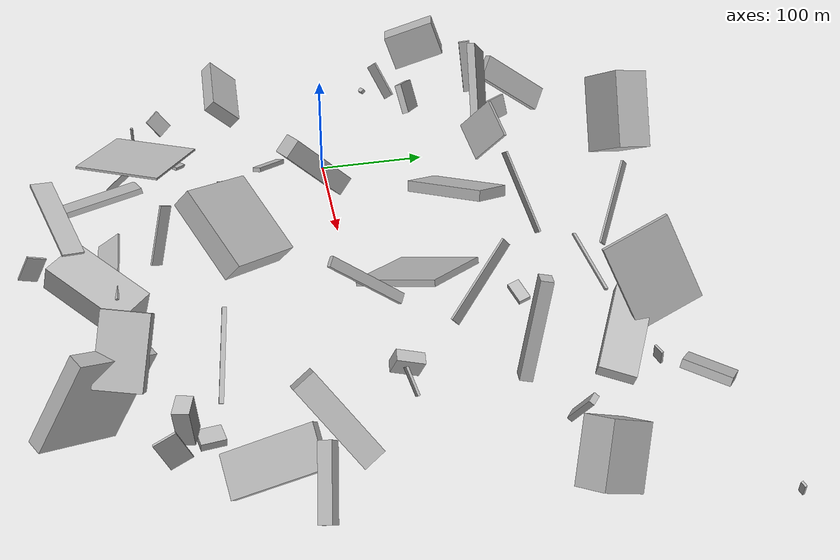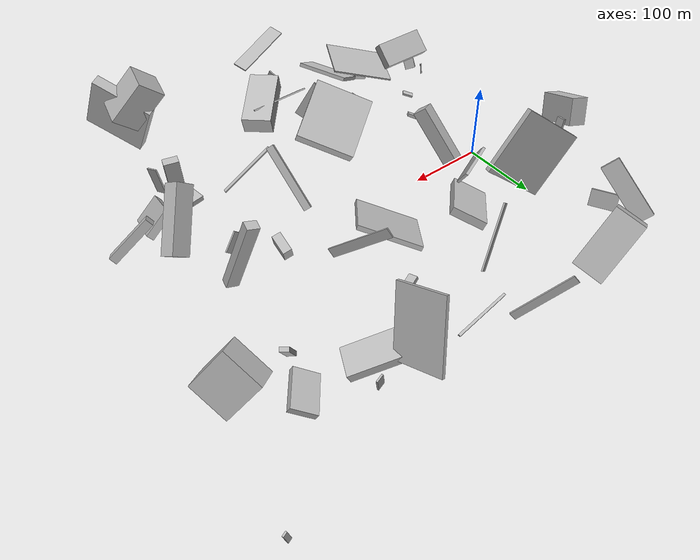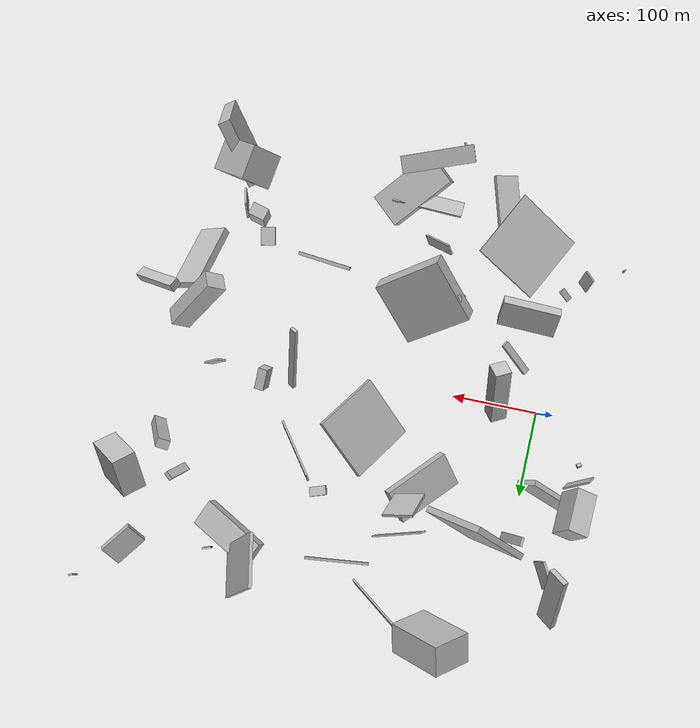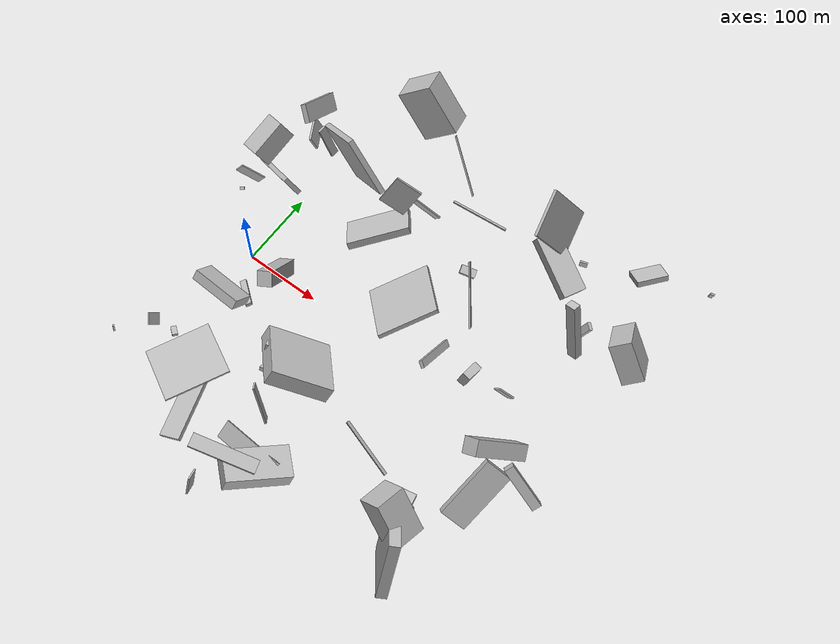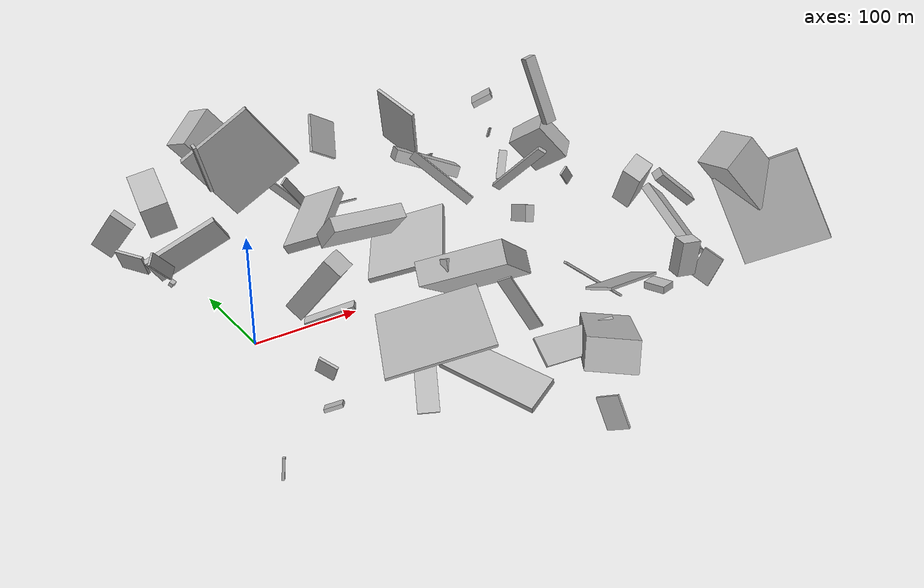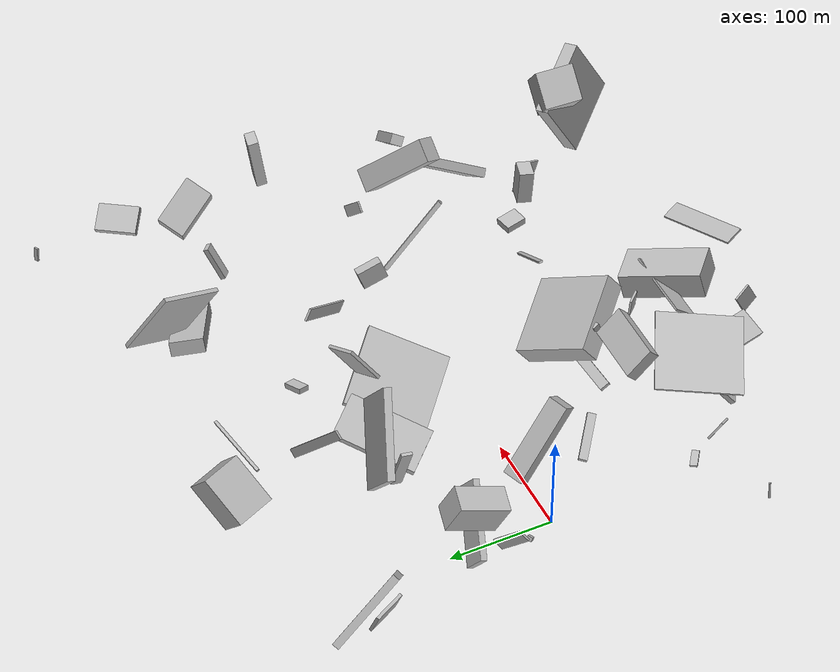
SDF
<sdf version="1.6">
 <world name="default">
  <scene>
   <sky><clouds><speed>12</speed></clouds></sky>
   <ambient>0.4 0.4 0.4 1</ambient>
   <background>0.7 0.7 0.7 1</background>
   <shadows>1</shadows>
  </scene>
  <gravity>0 0 -9.8066</gravity>
  <magnetic_field>6e-06 2.3e-05 -4.2e-05</magnetic_field>
  <physics default="0" name="default_physics" type="ode">
   <ode>
    <solver>
     <type>quick</type>
     <iters>10</iters>
     <sor>1.0</sor>
     <use_dynamic_moi_rescaling>0</use_dynamic_moi_rescaling>
    </solver>
    <constraints>
     <cfm>0</cfm>
     <erp>0.2</erp>
     <contact_max_correcting_vel>100</contact_max_correcting_vel>
     <contact_surface_layer>0.001</contact_surface_layer>
    </constraints>
   </ode>
   <max_step_size>0.004</max_step_size>
   <real_time_factor>1</real_time_factor>
   <real_time_update_rate>250</real_time_update_rate>
  </physics>
  <light name="sun" type="directional">
   <pose>0 0 10 0 0 0</pose>
   <diffuse>0.8 0.8 0.8 1</diffuse>
   <specular>0.2 0.2 0.2 1</specular>
   <attenuation>
    <range>1000</range>
    <constant>0.9</constant>
    <linear>0.01</linear>
    <quadratic>0.001</quadratic>
   </attenuation>
   <direction>-0.5 0.1 -0.9</direction>
  </light>
  <model name="building_1">
   <static>0</static>
   <pose>62.34938757499878 262.7529489826464 74.59584821827353 -0.9135121399435514 -0.2642029749367474 -1.3330759872095916</pose>
   <link name="link">
    <gravity>0</gravity>
    <pose>0 0 24.0 0 0 0</pose>
    <collision name="collision"><geometry><box><size>35 71 48</size></box></geometry></collision>
    <visual name="visual">
     <cast_shadows>0</cast_shadows>
     <geometry><box><size>35 71 48</size></box></geometry>
     <material>
      <script>
       <uri>model://HANNAS_wall/materials/scripts</uri>
       <uri>model://HANNAS_wall/materials/textures</uri>
       <name>vrc/HANNAS_wall</name>
      </script>
     </material>
    </visual>
   </link>
  </model>
  <model name="building_2">
   <static>0</static>
   <pose>452.66415575731094 170.3481478872397 40.609867421765315 -0.9302603256530277 0.4211669164197222 -2.4606733305564656</pose>
   <link name="link">
    <gravity>0</gravity>
    <pose>0 0 24.0 0 0 0</pose>
    <collision name="collision"><geometry><box><size>28 54 48</size></box></geometry></collision>
    <visual name="visual">
     <cast_shadows>0</cast_shadows>
     <geometry><box><size>28 54 48</size></box></geometry>
     <material>
      <script>
       <uri>model://HANNAS_wall/materials/scripts</uri>
       <uri>model://HANNAS_wall/materials/textures</uri>
       <name>vrc/HANNAS_wall</name>
      </script>
     </material>
    </visual>
   </link>
  </model>
  <model name="building_3">
   <static>0</static>
   <pose>79.12284285068331 -142.75370446738236 81.10158668292813 1.6358069206473167 -0.2693597338851433 -0.4985279171391441</pose>
   <link name="link">
    <gravity>0</gravity>
    <pose>0 0 40.0 0 0 0</pose>
    <collision name="collision"><geometry><box><size>80 2 80</size></box></geometry></collision>
    <visual name="visual">
     <cast_shadows>0</cast_shadows>
     <geometry><box><size>80 2 80</size></box></geometry>
     <material>
      <script>
       <uri>model://HANNAS_wall/materials/scripts</uri>
       <uri>model://HANNAS_wall/materials/textures</uri>
       <name>vrc/HANNAS_wall</name>
      </script>
     </material>
    </visual>
   </link>
  </model>
  <model name="building_4">
   <static>0</static>
   <pose>91.87961421493526 81.43226057496612 38.480480241121285 0.9439723259484368 -1.0801303999573502 2.9246890999095827</pose>
   <link name="link">
    <gravity>0</gravity>
    <pose>0 0 40.0 0 0 0</pose>
    <collision name="collision"><geometry><box><size>10 42 80</size></box></geometry></collision>
    <visual name="visual">
     <cast_shadows>0</cast_shadows>
     <geometry><box><size>10 42 80</size></box></geometry>
     <material>
      <script>
       <uri>model://HANNAS_wall/materials/scripts</uri>
       <uri>model://HANNAS_wall/materials/textures</uri>
       <name>vrc/HANNAS_wall</name>
      </script>
     </material>
    </visual>
   </link>
  </model>
  <model name="building_5">
   <static>0</static>
   <pose>121.67385470424075 -107.81774035631747 82.95117362416651 -1.962098434707408 1.2613159090608272 -1.6747529641510654</pose>
   <link name="link">
    <gravity>0</gravity>
    <pose>0 0 3.0 0 0 0</pose>
    <collision name="collision"><geometry><box><size>12 7 6</size></box></geometry></collision>
    <visual name="visual">
     <cast_shadows>0</cast_shadows>
     <geometry><box><size>12 7 6</size></box></geometry>
     <material>
      <script>
       <uri>model://HANNAS_wall/materials/scripts</uri>
       <uri>model://HANNAS_wall/materials/textures</uri>
       <name>vrc/HANNAS_wall</name>
      </script>
     </material>
    </visual>
   </link>
  </model>
  <model name="building_6">
   <static>0</static>
   <pose>404.39782087575065 -38.937790894129115 78.83599010615845 2.164332590947073 -0.6589221005022975 0.03840044580266135</pose>
   <link name="link">
    <gravity>0</gravity>
    <pose>0 0 10.0 0 0 0</pose>
    <collision name="collision"><geometry><box><size>23 80 20</size></box></geometry></collision>
    <visual name="visual">
     <cast_shadows>0</cast_shadows>
     <geometry><box><size>23 80 20</size></box></geometry>
     <material>
      <script>
       <uri>model://HANNAS_wall/materials/scripts</uri>
       <uri>model://HANNAS_wall/materials/textures</uri>
       <name>vrc/HANNAS_wall</name>
      </script>
     </material>
    </visual>
   </link>
  </model>
  <model name="building_7">
   <static>0</static>
   <pose>393.52361808681127 -239.83183299001888 74.45058793060147 -0.203765376213732 -0.4811141323311867 -0.9096229623069847</pose>
   <link name="link">
    <gravity>0</gravity>
    <pose>0 0 40.0 0 0 0</pose>
    <collision name="collision"><geometry><box><size>73 13 80</size></box></geometry></collision>
    <visual name="visual">
     <cast_shadows>0</cast_shadows>
     <geometry><box><size>73 13 80</size></box></geometry>
     <material>
      <script>
       <uri>model://HANNAS_wall/materials/scripts</uri>
       <uri>model://HANNAS_wall/materials/textures</uri>
       <name>vrc/HANNAS_wall</name>
      </script>
     </material>
    </visual>
   </link>
  </model>
  <model name="building_8">
   <static>0</static>
   <pose>-54.187000130572706 101.96397491930237 106.11142800743377 0.9840624899962018 1.1405334198235606 0.8194045507093157</pose>
   <link name="link">
    <gravity>0</gravity>
    <pose>0 0 12.0 0 0 0</pose>
    <collision name="collision"><geometry><box><size>33 48 24</size></box></geometry></collision>
    <visual name="visual">
     <cast_shadows>0</cast_shadows>
     <geometry><box><size>33 48 24</size></box></geometry>
     <material>
      <script>
       <uri>model://HANNAS_wall/materials/scripts</uri>
       <uri>model://HANNAS_wall/materials/textures</uri>
       <name>vrc/HANNAS_wall</name>
      </script>
     </material>
    </visual>
   </link>
  </model>
  <model name="building_9">
   <static>0</static>
   <pose>378.3559888820904 -177.8469583644375 135.75159822600332 -1.397242927512087 0.7364825100363489 3.07800435852017</pose>
   <link name="link">
    <gravity>0</gravity>
    <pose>0 0 18.0 0 0 0</pose>
    <collision name="collision"><geometry><box><size>35 57 36</size></box></geometry></collision>
    <visual name="visual">
     <cast_shadows>0</cast_shadows>
     <geometry><box><size>35 57 36</size></box></geometry>
     <material>
      <script>
       <uri>model://HANNAS_wall/materials/scripts</uri>
       <uri>model://HANNAS_wall/materials/textures</uri>
       <name>vrc/HANNAS_wall</name>
      </script>
     </material>
    </visual>
   </link>
  </model>
  <model name="building_10">
   <static>0</static>
   <pose>345.9533358181516 226.9995165693151 33.395150549836615 -1.4766906078488449 0.04693730425087217 0.31942502170886183</pose>
   <link name="link">
    <gravity>0</gravity>
    <pose>0 0 1.0 0 0 0</pose>
    <collision name="collision"><geometry><box><size>10 13 2</size></box></geometry></collision>
    <visual name="visual">
     <cast_shadows>0</cast_shadows>
     <geometry><box><size>10 13 2</size></box></geometry>
     <material>
      <script>
       <uri>model://HANNAS_wall/materials/scripts</uri>
       <uri>model://HANNAS_wall/materials/textures</uri>
       <name>vrc/HANNAS_wall</name>
      </script>
     </material>
    </visual>
   </link>
  </model>
  <model name="building_11">
   <static>0</static>
   <pose>51.83171154249607 -101.35679648365956 128.88801759117507 0.7765326595046728 -0.03625376524622561 3.1037159927751934</pose>
   <link name="link">
    <gravity>0</gravity>
    <pose>0 0 6.0 0 0 0</pose>
    <collision name="collision"><geometry><box><size>61 30 12</size></box></geometry></collision>
    <visual name="visual">
     <cast_shadows>0</cast_shadows>
     <geometry><box><size>61 30 12</size></box></geometry>
     <material>
      <script>
       <uri>model://HANNAS_wall/materials/scripts</uri>
       <uri>model://HANNAS_wall/materials/textures</uri>
       <name>vrc/HANNAS_wall</name>
      </script>
     </material>
    </visual>
   </link>
  </model>
  <model name="building_12">
   <static>0</static>
   <pose>144.49921961424633 251.82710438885312 32.7073140064923 1.2883077972260122 -0.701933611894651 2.593875800220125</pose>
   <link name="link">
    <gravity>0</gravity>
    <pose>0 0 1.0 0 0 0</pose>
    <collision name="collision"><geometry><box><size>80 10 2</size></box></geometry></collision>
    <visual name="visual">
     <cast_shadows>0</cast_shadows>
     <geometry><box><size>80 10 2</size></box></geometry>
     <material>
      <script>
       <uri>model://HANNAS_wall/materials/scripts</uri>
       <uri>model://HANNAS_wall/materials/textures</uri>
       <name>vrc/HANNAS_wall</name>
      </script>
     </material>
    </visual>
   </link>
  </model>
  <model name="building_13">
   <static>0</static>
   <pose>266.43359610090033 98.77499911264744 60.9285741150797 -0.1541465588614222 -0.6195466169037351 2.2375527414898646</pose>
   <link name="link">
    <gravity>0</gravity>
    <pose>0 0 6.0 0 0 0</pose>
    <collision name="collision"><geometry><box><size>80 2 12</size></box></geometry></collision>
    <visual name="visual">
     <cast_shadows>0</cast_shadows>
     <geometry><box><size>80 2 12</size></box></geometry>
     <material>
      <script>
       <uri>model://HANNAS_wall/materials/scripts</uri>
       <uri>model://HANNAS_wall/materials/textures</uri>
       <name>vrc/HANNAS_wall</name>
      </script>
     </material>
    </visual>
   </link>
  </model>
  <model name="building_14">
   <static>0</static>
   <pose>189.91855535702112 -81.26140938754716 46.90873500078315 1.0021806698290134 -0.363378252151436 -0.804818233806977</pose>
   <link name="link">
    <gravity>0</gravity>
    <pose>0 0 40.0 0 0 0</pose>
    <collision name="collision"><geometry><box><size>76 21 80</size></box></geometry></collision>
    <visual name="visual">
     <cast_shadows>0</cast_shadows>
     <geometry><box><size>76 21 80</size></box></geometry>
     <material>
      <script>
       <uri>model://HANNAS_wall/materials/scripts</uri>
       <uri>model://HANNAS_wall/materials/textures</uri>
       <name>vrc/HANNAS_wall</name>
      </script>
     </material>
    </visual>
   </link>
  </model>
  <model name="building_15">
   <static>0</static>
   <pose>19.187382336811883 133.3336039857555 115.56586704780871 1.459012642270134 0.27449533053889763 3.004642470342967</pose>
   <link name="link">
    <gravity>0</gravity>
    <pose>0 0 5.0 0 0 0</pose>
    <collision name="collision"><geometry><box><size>3 49 10</size></box></geometry></collision>
    <visual name="visual">
     <cast_shadows>0</cast_shadows>
     <geometry><box><size>3 49 10</size></box></geometry>
     <material>
      <script>
       <uri>model://HANNAS_wall/materials/scripts</uri>
       <uri>model://HANNAS_wall/materials/textures</uri>
       <name>vrc/HANNAS_wall</name>
      </script>
     </material>
    </visual>
   </link>
  </model>
  <model name="building_16">
   <static>0</static>
   <pose>-65.5191920878824 -183.19350430529207 9.5990113187339 0.06493018407845164 -0.07831531539102067 2.56163800457105</pose>
   <link name="link">
    <gravity>0</gravity>
    <pose>0 0 8.5 0 0 0</pose>
    <collision name="collision"><geometry><box><size>2 2 17</size></box></geometry></collision>
    <visual name="visual">
     <cast_shadows>0</cast_shadows>
     <geometry><box><size>2 2 17</size></box></geometry>
     <material>
      <script>
       <uri>model://HANNAS_wall/materials/scripts</uri>
       <uri>model://HANNAS_wall/materials/textures</uri>
       <name>vrc/HANNAS_wall</name>
      </script>
     </material>
    </visual>
   </link>
  </model>
  <model name="building_17">
   <static>0</static>
   <pose>414.73566793397833 -94.56406359477239 44.18760380119799 0.5779163390443169 0.5929744018208891 0.16534780257842682</pose>
   <link name="link">
    <gravity>0</gravity>
    <pose>0 0 4.5 0 0 0</pose>
    <collision name="collision"><geometry><box><size>36 80 9</size></box></geometry></collision>
    <visual name="visual">
     <cast_shadows>0</cast_shadows>
     <geometry><box><size>36 80 9</size></box></geometry>
     <material>
      <script>
       <uri>model://HANNAS_wall/materials/scripts</uri>
       <uri>model://HANNAS_wall/materials/textures</uri>
       <name>vrc/HANNAS_wall</name>
      </script>
     </material>
    </visual>
   </link>
  </model>
  <model name="building_18">
   <static>0</static>
   <pose>495.76162317391595 292.4059675179415 23.900257114548527 0.8066956782364958 -1.3261907769479875 -0.4976375980623363</pose>
   <link name="link">
    <gravity>0</gravity>
    <pose>0 0 2.5 0 0 0</pose>
    <collision name="collision"><geometry><box><size>13 2 5</size></box></geometry></collision>
    <visual name="visual">
     <cast_shadows>0</cast_shadows>
     <geometry><box><size>13 2 5</size></box></geometry>
     <material>
      <script>
       <uri>model://HANNAS_wall/materials/scripts</uri>
       <uri>model://HANNAS_wall/materials/textures</uri>
       <name>vrc/HANNAS_wall</name>
      </script>
     </material>
    </visual>
   </link>
  </model>
  <model name="building_19">
   <static>0</static>
   <pose>136.8399827950048 -209.04281323219342 47.71200539411719 1.6841518244787645 0.9160731569851253 1.6069077831667156</pose>
   <link name="link">
    <gravity>0</gravity>
    <pose>0 0 40.0 0 0 0</pose>
    <collision name="collision"><geometry><box><size>2 24 80</size></box></geometry></collision>
    <visual name="visual">
     <cast_shadows>0</cast_shadows>
     <geometry><box><size>2 24 80</size></box></geometry>
     <material>
      <script>
       <uri>model://HANNAS_wall/materials/scripts</uri>
       <uri>model://HANNAS_wall/materials/textures</uri>
       <name>vrc/HANNAS_wall</name>
      </script>
     </material>
    </visual>
   </link>
  </model>
  <model name="building_20">
   <static>0</static>
   <pose>2.850111534414097 -146.11004073415256 21.129728794026086 1.9317041682329037 -0.10530726947277551 -2.2450201927473987</pose>
   <link name="link">
    <gravity>0</gravity>
    <pose>0 0 7.5 0 0 0</pose>
    <collision name="collision"><geometry><box><size>7 3 15</size></box></geometry></collision>
    <visual name="visual">
     <cast_shadows>0</cast_shadows>
     <geometry><box><size>7 3 15</size></box></geometry>
     <material>
      <script>
       <uri>model://HANNAS_wall/materials/scripts</uri>
       <uri>model://HANNAS_wall/materials/textures</uri>
       <name>vrc/HANNAS_wall</name>
      </script>
     </material>
    </visual>
   </link>
  </model>
  <model name="building_21">
   <static>0</static>
   <pose>64.0405139716596 -10.473808305736753 47.55379646151114 1.8371708379582996 -0.8548954049231788 -1.3168449085188618</pose>
   <link name="link">
    <gravity>0</gravity>
    <pose>0 0 9.5 0 0 0</pose>
    <collision name="collision"><geometry><box><size>80 19 19</size></box></geometry></collision>
    <visual name="visual">
     <cast_shadows>0</cast_shadows>
     <geometry><box><size>80 19 19</size></box></geometry>
     <material>
      <script>
       <uri>model://HANNAS_wall/materials/scripts</uri>
       <uri>model://HANNAS_wall/materials/textures</uri>
       <name>vrc/HANNAS_wall</name>
      </script>
     </material>
    </visual>
   </link>
  </model>
  <model name="building_22">
   <static>0</static>
   <pose>430.8612661337306 229.06322307938433 95.10935563529372 -0.06942585280767766 -0.4999811947811804 -0.6166653882449603</pose>
   <link name="link">
    <gravity>0</gravity>
    <pose>0 0 3.5 0 0 0</pose>
    <collision name="collision"><geometry><box><size>26 39 7</size></box></geometry></collision>
    <visual name="visual">
     <cast_shadows>0</cast_shadows>
     <geometry><box><size>26 39 7</size></box></geometry>
     <material>
      <script>
       <uri>model://HANNAS_wall/materials/scripts</uri>
       <uri>model://HANNAS_wall/materials/textures</uri>
       <name>vrc/HANNAS_wall</name>
      </script>
     </material>
    </visual>
   </link>
  </model>
  <model name="building_23">
   <static>0</static>
   <pose>233.29730217204948 140.3701440550483 15.135145486747607 -0.17292091095279027 -0.2706915981866551 -2.795900309246364</pose>
   <link name="link">
    <gravity>0</gravity>
    <pose>0 0 2.5 0 0 0</pose>
    <collision name="collision"><geometry><box><size>20 11 5</size></box></geometry></collision>
    <visual name="visual">
     <cast_shadows>0</cast_shadows>
     <geometry><box><size>20 11 5</size></box></geometry>
     <material>
      <script>
       <uri>model://HANNAS_wall/materials/scripts</uri>
       <uri>model://HANNAS_wall/materials/textures</uri>
       <name>vrc/HANNAS_wall</name>
      </script>
     </material>
    </visual>
   </link>
  </model>
  <model name="building_24">
   <static>0</static>
   <pose>47.10866321579607 -187.50740786661993 49.63481109084307 -0.8497394814786149 0.06572446996593824 2.5809767375579122</pose>
   <link name="link">
    <gravity>0</gravity>
    <pose>0 0 2.5 0 0 0</pose>
    <collision name="collision"><geometry><box><size>16 52 5</size></box></geometry></collision>
    <visual name="visual">
     <cast_shadows>0</cast_shadows>
     <geometry><box><size>16 52 5</size></box></geometry>
     <material>
      <script>
       <uri>model://HANNAS_wall/materials/scripts</uri>
       <uri>model://HANNAS_wall/materials/textures</uri>
       <name>vrc/HANNAS_wall</name>
      </script>
     </material>
    </visual>
   </link>
  </model>
  <model name="building_25">
   <static>0</static>
   <pose>218.741734178835 87.52297297550092 36.31189182466218 1.9519851010966602 -0.3490152362846835 -0.7627314745186908</pose>
   <link name="link">
    <gravity>0</gravity>
    <pose>0 0 40.0 0 0 0</pose>
    <collision name="collision"><geometry><box><size>80 6 80</size></box></geometry></collision>
    <visual name="visual">
     <cast_shadows>0</cast_shadows>
     <geometry><box><size>80 6 80</size></box></geometry>
     <material>
      <script>
       <uri>model://HANNAS_wall/materials/scripts</uri>
       <uri>model://HANNAS_wall/materials/textures</uri>
       <name>vrc/HANNAS_wall</name>
      </script>
     </material>
    </visual>
   </link>
  </model>
  <model name="building_26">
   <static>0</static>
   <pose>158.8469613676437 212.58735534513647 12.142884749598057 -1.6302437058626664 -0.21675924797029048 -1.4454335145813937</pose>
   <link name="link">
    <gravity>0</gravity>
    <pose>0 0 38.0 0 0 0</pose>
    <collision name="collision"><geometry><box><size>3 2 76</size></box></geometry></collision>
    <visual name="visual">
     <cast_shadows>0</cast_shadows>
     <geometry><box><size>3 2 76</size></box></geometry>
     <material>
      <script>
       <uri>model://HANNAS_wall/materials/scripts</uri>
       <uri>model://HANNAS_wall/materials/textures</uri>
       <name>vrc/HANNAS_wall</name>
      </script>
     </material>
    </visual>
   </link>
  </model>
  <model name="building_27">
   <static>0</static>
   <pose>-50.55192837534979 206.53726686700875 43.828383397470475 2.171869491793408 -0.7001613271703032 -1.450789919322908</pose>
   <link name="link">
    <gravity>0</gravity>
    <pose>0 0 3.5 0 0 0</pose>
    <collision name="collision"><geometry><box><size>80 24 7</size></box></geometry></collision>
    <visual name="visual">
     <cast_shadows>0</cast_shadows>
     <geometry><box><size>80 24 7</size></box></geometry>
     <material>
      <script>
       <uri>model://HANNAS_wall/materials/scripts</uri>
       <uri>model://HANNAS_wall/materials/textures</uri>
       <name>vrc/HANNAS_wall</name>
      </script>
     </material>
    </visual>
   </link>
  </model>
  <model name="building_28">
   <static>0</static>
   <pose>-54.34365566628623 64.96650028889668 57.7982525765386 0.7923748628398449 0.1163070176121946 2.2605503127888165</pose>
   <link name="link">
    <gravity>0</gravity>
    <pose>0 0 6.0 0 0 0</pose>
    <collision name="collision"><geometry><box><size>2 36 12</size></box></geometry></collision>
    <visual name="visual">
     <cast_shadows>0</cast_shadows>
     <geometry><box><size>2 36 12</size></box></geometry>
     <material>
      <script>
       <uri>model://HANNAS_wall/materials/scripts</uri>
       <uri>model://HANNAS_wall/materials/textures</uri>
       <name>vrc/HANNAS_wall</name>
      </script>
     </material>
    </visual>
   </link>
  </model>
  <model name="building_29">
   <static>0</static>
   <pose>-13.735582882003882 -155.3131126274542 62.606869293425234 -2.048665851105863 -0.42717514327050254 2.241032945484434</pose>
   <link name="link">
    <gravity>0</gravity>
    <pose>0 0 1.0 0 0 0</pose>
    <collision name="collision"><geometry><box><size>15 20 2</size></box></geometry></collision>
    <visual name="visual">
     <cast_shadows>0</cast_shadows>
     <geometry><box><size>15 20 2</size></box></geometry>
     <material>
      <script>
       <uri>model://HANNAS_wall/materials/scripts</uri>
       <uri>model://HANNAS_wall/materials/textures</uri>
       <name>vrc/HANNAS_wall</name>
      </script>
     </material>
    </visual>
   </link>
  </model>
  <model name="building_30">
   <static>0</static>
   <pose>383.5145465532145 18.96906751911917 61.28845070115933 0.23073292510011692 -0.7903850913397119 0.05728464697260642</pose>
   <link name="link">
    <gravity>0</gravity>
    <pose>0 0 12.0 0 0 0</pose>
    <collision name="collision"><geometry><box><size>11 2 24</size></box></geometry></collision>
    <visual name="visual">
     <cast_shadows>0</cast_shadows>
     <geometry><box><size>11 2 24</size></box></geometry>
     <material>
      <script>
       <uri>model://HANNAS_wall/materials/scripts</uri>
       <uri>model://HANNAS_wall/materials/textures</uri>
       <name>vrc/HANNAS_wall</name>
      </script>
     </material>
    </visual>
   </link>
  </model>
  <model name="building_31">
   <static>0</static>
   <pose>84.53653538571456 137.61523854697103 82.95990427858385 0.6593763021129851 0.15057621030550553 -1.851827882352264</pose>
   <link name="link">
    <gravity>0</gravity>
    <pose>0 0 40.0 0 0 0</pose>
    <collision name="collision"><geometry><box><size>7 80 80</size></box></geometry></collision>
    <visual name="visual">
     <cast_shadows>0</cast_shadows>
     <geometry><box><size>7 80 80</size></box></geometry>
     <material>
      <script>
       <uri>model://HANNAS_wall/materials/scripts</uri>
       <uri>model://HANNAS_wall/materials/textures</uri>
       <name>vrc/HANNAS_wall</name>
      </script>
     </material>
    </visual>
   </link>
  </model>
  <model name="building_32">
   <static>0</static>
   <pose>-47.722779602893254 50.11271628942694 53.45951191316899 1.7782407209265751 -1.0172814109093788 -1.1944474205525721</pose>
   <link name="link">
    <gravity>0</gravity>
    <pose>0 0 2.5 0 0 0</pose>
    <collision name="collision"><geometry><box><size>4 4 5</size></box></geometry></collision>
    <visual name="visual">
     <cast_shadows>0</cast_shadows>
     <geometry><box><size>4 4 5</size></box></geometry>
     <material>
      <script>
       <uri>model://HANNAS_wall/materials/scripts</uri>
       <uri>model://HANNAS_wall/materials/textures</uri>
       <name>vrc/HANNAS_wall</name>
      </script>
     </material>
    </visual>
   </link>
  </model>
  <model name="building_33">
   <static>0</static>
   <pose>357.96349353044377 188.61294144327294 27.697163744302916 -0.4714306826401472 -1.2044801979937376 0.0329742044147101</pose>
   <link name="link">
    <gravity>0</gravity>
    <pose>0 0 40.0 0 0 0</pose>
    <collision name="collision"><geometry><box><size>14 32 80</size></box></geometry></collision>
    <visual name="visual">
     <cast_shadows>0</cast_shadows>
     <geometry><box><size>14 32 80</size></box></geometry>
     <material>
      <script>
       <uri>model://HANNAS_wall/materials/scripts</uri>
       <uri>model://HANNAS_wall/materials/textures</uri>
       <name>vrc/HANNAS_wall</name>
      </script>
     </material>
    </visual>
   </link>
  </model>
  <model name="building_34">
   <static>0</static>
   <pose>74.77816738809732 -179.44615944345884 56.19373383498954 1.6333707966023225 -0.38051073881482084 0.25748359885496064</pose>
   <link name="link">
    <gravity>0</gravity>
    <pose>0 0 40.0 0 0 0</pose>
    <collision name="collision"><geometry><box><size>28 5 80</size></box></geometry></collision>
    <visual name="visual">
     <cast_shadows>0</cast_shadows>
     <geometry><box><size>28 5 80</size></box></geometry>
     <material>
      <script>
       <uri>model://HANNAS_wall/materials/scripts</uri>
       <uri>model://HANNAS_wall/materials/textures</uri>
       <name>vrc/HANNAS_wall</name>
      </script>
     </material>
    </visual>
   </link>
  </model>
  <model name="building_35">
   <static>0</static>
   <pose>175.17004012364595 -237.04937450361237 108.6986937386493 -0.7735485948533434 1.2151828740351498 -2.002250155577259</pose>
   <link name="link">
    <gravity>0</gravity>
    <pose>0 0 9.5 0 0 0</pose>
    <collision name="collision"><geometry><box><size>2 80 19</size></box></geometry></collision>
    <visual name="visual">
     <cast_shadows>0</cast_shadows>
     <geometry><box><size>2 80 19</size></box></geometry>
     <material>
      <script>
       <uri>model://HANNAS_wall/materials/scripts</uri>
       <uri>model://HANNAS_wall/materials/textures</uri>
       <name>vrc/HANNAS_wall</name>
      </script>
     </material>
    </visual>
   </link>
  </model>
  <model name="building_36">
   <static>0</static>
   <pose>131.3573179498897 165.55181648605898 45.6200670141737 -0.11298806782466157 -0.8368162623695291 -2.69886534466805</pose>
   <link name="link">
    <gravity>0</gravity>
    <pose>0 0 4.5 0 0 0</pose>
    <collision name="collision"><geometry><box><size>80 2 9</size></box></geometry></collision>
    <visual name="visual">
     <cast_shadows>0</cast_shadows>
     <geometry><box><size>80 2 9</size></box></geometry>
     <material>
      <script>
       <uri>model://HANNAS_wall/materials/scripts</uri>
       <uri>model://HANNAS_wall/materials/textures</uri>
       <name>vrc/HANNAS_wall</name>
      </script>
     </material>
    </visual>
   </link>
  </model>
  <model name="building_37">
   <static>0</static>
   <pose>323.7071115932041 25.728075423518714 44.6741595748373 -2.9159308873756102 0.3085263527984654 1.5298579120758204</pose>
   <link name="link">
    <gravity>0</gravity>
    <pose>0 0 9.0 0 0 0</pose>
    <collision name="collision"><geometry><box><size>25 11 18</size></box></geometry></collision>
    <visual name="visual">
     <cast_shadows>0</cast_shadows>
     <geometry><box><size>25 11 18</size></box></geometry>
     <material>
      <script>
       <uri>model://HANNAS_wall/materials/scripts</uri>
       <uri>model://HANNAS_wall/materials/textures</uri>
       <name>vrc/HANNAS_wall</name>
      </script>
     </material>
    </visual>
   </link>
  </model>
  <model name="building_38">
   <static>0</static>
   <pose>141.88181900189764 123.75045907280492 128.7369364084634 -2.304296823146791 -0.9072390479739114 1.1011742770602984</pose>
   <link name="link">
    <gravity>0</gravity>
    <pose>0 0 1.5 0 0 0</pose>
    <collision name="collision"><geometry><box><size>39 35 3</size></box></geometry></collision>
    <visual name="visual">
     <cast_shadows>0</cast_shadows>
     <geometry><box><size>39 35 3</size></box></geometry>
     <material>
      <script>
       <uri>model://HANNAS_wall/materials/scripts</uri>
       <uri>model://HANNAS_wall/materials/textures</uri>
       <name>vrc/HANNAS_wall</name>
      </script>
     </material>
    </visual>
   </link>
  </model>
  <model name="building_39">
   <static>0</static>
   <pose>280.65315209959425 -121.19420652220697 30.328038213969148 -1.3594240134778661 -0.6365463343788178 2.957945062176609</pose>
   <link name="link">
    <gravity>0</gravity>
    <pose>0 0 2.0 0 0 0</pose>
    <collision name="collision"><geometry><box><size>80 2 4</size></box></geometry></collision>
    <visual name="visual">
     <cast_shadows>0</cast_shadows>
     <geometry><box><size>80 2 4</size></box></geometry>
     <material>
      <script>
       <uri>model://HANNAS_wall/materials/scripts</uri>
       <uri>model://HANNAS_wall/materials/textures</uri>
       <name>vrc/HANNAS_wall</name>
      </script>
     </material>
    </visual>
   </link>
  </model>
  <model name="building_40">
   <static>0</static>
   <pose>371.5584961024459 -160.58626066579737 45.21673295147908 -1.5469877831317016 -0.0643169063923166 1.3052130829043898</pose>
   <link name="link">
    <gravity>0</gravity>
    <pose>0 0 9.5 0 0 0</pose>
    <collision name="collision"><geometry><box><size>14 35 19</size></box></geometry></collision>
    <visual name="visual">
     <cast_shadows>0</cast_shadows>
     <geometry><box><size>14 35 19</size></box></geometry>
     <material>
      <script>
       <uri>model://HANNAS_wall/materials/scripts</uri>
       <uri>model://HANNAS_wall/materials/textures</uri>
       <name>vrc/HANNAS_wall</name>
      </script>
     </material>
    </visual>
   </link>
  </model>
  <model name="building_41">
   <static>0</static>
   <pose>459.68603812953296 -64.51924921473396 65.90122904729182 2.6705899008975513 -0.6550287775181394 2.981424047523105</pose>
   <link name="link">
    <gravity>0</gravity>
    <pose>0 0 5.0 0 0 0</pose>
    <collision name="collision"><geometry><box><size>60 12 10</size></box></geometry></collision>
    <visual name="visual">
     <cast_shadows>0</cast_shadows>
     <geometry><box><size>60 12 10</size></box></geometry>
     <material>
      <script>
       <uri>model://HANNAS_wall/materials/scripts</uri>
       <uri>model://HANNAS_wall/materials/textures</uri>
       <name>vrc/HANNAS_wall</name>
      </script>
     </material>
    </visual>
   </link>
  </model>
  <model name="building_42">
   <static>0</static>
   <pose>221.42328428566594 -193.5229672101428 31.45786472165859 -0.06231711492516074 1.2843446301837518 -2.3701197181223006</pose>
   <link name="link">
    <gravity>0</gravity>
    <pose>0 0 40.0 0 0 0</pose>
    <collision name="collision"><geometry><box><size>26 40 80</size></box></geometry></collision>
    <visual name="visual">
     <cast_shadows>0</cast_shadows>
     <geometry><box><size>26 40 80</size></box></geometry>
     <material>
      <script>
       <uri>model://HANNAS_wall/materials/scripts</uri>
       <uri>model://HANNAS_wall/materials/textures</uri>
       <name>vrc/HANNAS_wall</name>
      </script>
     </material>
    </visual>
   </link>
  </model>
  <model name="building_43">
   <static>0</static>
   <pose>383.0166505070279 -179.26794461394744 29.9557770971293 0.029204496508335603 -1.2157857335794997 -1.3845124874443135</pose>
   <link name="link">
    <gravity>0</gravity>
    <pose>0 0 10.0 0 0 0</pose>
    <collision name="collision"><geometry><box><size>33 2 20</size></box></geometry></collision>
    <visual name="visual">
     <cast_shadows>0</cast_shadows>
     <geometry><box><size>33 2 20</size></box></geometry>
     <material>
      <script>
       <uri>model://HANNAS_wall/materials/scripts</uri>
       <uri>model://HANNAS_wall/materials/textures</uri>
       <name>vrc/HANNAS_wall</name>
      </script>
     </material>
    </visual>
   </link>
  </model>
  <model name="building_44">
   <static>0</static>
   <pose>292.41649986009077 -6.279222963052618 98.52287615223264 0.7506635273207931 -0.744326210882356 -1.4558429460442537</pose>
   <link name="link">
    <gravity>0</gravity>
    <pose>0 0 4.5 0 0 0</pose>
    <collision name="collision"><geometry><box><size>80 4 9</size></box></geometry></collision>
    <visual name="visual">
     <cast_shadows>0</cast_shadows>
     <geometry><box><size>80 4 9</size></box></geometry>
     <material>
      <script>
       <uri>model://HANNAS_wall/materials/scripts</uri>
       <uri>model://HANNAS_wall/materials/textures</uri>
       <name>vrc/HANNAS_wall</name>
      </script>
     </material>
    </visual>
   </link>
  </model>
  <model name="building_45">
   <static>0</static>
   <pose>138.83849070241243 -110.2879931123403 20.05463356094161 -0.5372247533551895 -0.19977706991773556 0.1561683005207089</pose>
   <link name="link">
    <gravity>0</gravity>
    <pose>0 0 2.5 0 0 0</pose>
    <collision name="collision"><geometry><box><size>55 10 5</size></box></geometry></collision>
    <visual name="visual">
     <cast_shadows>0</cast_shadows>
     <geometry><box><size>55 10 5</size></box></geometry>
     <material>
      <script>
       <uri>model://HANNAS_wall/materials/scripts</uri>
       <uri>model://HANNAS_wall/materials/textures</uri>
       <name>vrc/HANNAS_wall</name>
      </script>
     </material>
    </visual>
   </link>
  </model>
  <model name="building_46">
   <static>0</static>
   <pose>304.0944544666761 231.38587610204536 84.74412233819423 2.4224201446888065 -1.0411835701943388 -2.2898792385673947</pose>
   <link name="link">
    <gravity>0</gravity>
    <pose>0 0 2.0 0 0 0</pose>
    <collision name="collision"><geometry><box><size>80 60 4</size></box></geometry></collision>
    <visual name="visual">
     <cast_shadows>0</cast_shadows>
     <geometry><box><size>80 60 4</size></box></geometry>
     <material>
      <script>
       <uri>model://HANNAS_wall/materials/scripts</uri>
       <uri>model://HANNAS_wall/materials/textures</uri>
       <name>vrc/HANNAS_wall</name>
      </script>
     </material>
    </visual>
   </link>
  </model>
  <model name="building_47">
   <static>0</static>
   <pose>141.33202823441354 -270.63040240676327 27.170808558080168 1.0934051315312043 0.048742919629618735 0.30213910306559905</pose>
   <link name="link">
    <gravity>0</gravity>
    <pose>0 0 9.0 0 0 0</pose>
    <collision name="collision"><geometry><box><size>2 25 18</size></box></geometry></collision>
    <visual name="visual">
     <cast_shadows>0</cast_shadows>
     <geometry><box><size>2 25 18</size></box></geometry>
     <material>
      <script>
       <uri>model://HANNAS_wall/materials/scripts</uri>
       <uri>model://HANNAS_wall/materials/textures</uri>
       <name>vrc/HANNAS_wall</name>
      </script>
     </material>
    </visual>
   </link>
  </model>
  <model name="building_48">
   <static>0</static>
   <pose>417.98074361187486 91.41216504713783 102.69152021992835 -0.17278264018154355 -0.309794151395672 -0.1271092663564894</pose>
   <link name="link">
    <gravity>0</gravity>
    <pose>0 0 40.0 0 0 0</pose>
    <collision name="collision"><geometry><box><size>13 10 80</size></box></geometry></collision>
    <visual name="visual">
     <cast_shadows>0</cast_shadows>
     <geometry><box><size>13 10 80</size></box></geometry>
     <material>
      <script>
       <uri>model://HANNAS_wall/materials/scripts</uri>
       <uri>model://HANNAS_wall/materials/textures</uri>
       <name>vrc/HANNAS_wall</name>
      </script>
     </material>
    </visual>
   </link>
  </model>
  <model name="building_49">
   <static>0</static>
   <pose>351.59231685219004 -140.64364922464517 7.256410390304442 0.07215934702093191 -0.0010005859213738843 -2.9511654798199274</pose>
   <link name="link">
    <gravity>0</gravity>
    <pose>0 0 3.5 0 0 0</pose>
    <collision name="collision"><geometry><box><size>17 21 7</size></box></geometry></collision>
    <visual name="visual">
     <cast_shadows>0</cast_shadows>
     <geometry><box><size>17 21 7</size></box></geometry>
     <material>
      <script>
       <uri>model://HANNAS_wall/materials/scripts</uri>
       <uri>model://HANNAS_wall/materials/textures</uri>
       <name>vrc/HANNAS_wall</name>
      </script>
     </material>
    </visual>
   </link>
  </model>
  <model name="building_50">
   <static>0</static>
   <pose>-42.50006646768999 184.38338293638628 18.468646603575696 1.9299920521287304 0.01767873189619813 -1.076822315287087</pose>
   <link name="link">
    <gravity>0</gravity>
    <pose>0 0 1.5 0 0 0</pose>
    <collision name="collision"><geometry><box><size>34 22 3</size></box></geometry></collision>
    <visual name="visual">
     <cast_shadows>0</cast_shadows>
     <geometry><box><size>34 22 3</size></box></geometry>
     <material>
      <script>
       <uri>model://HANNAS_wall/materials/scripts</uri>
       <uri>model://HANNAS_wall/materials/textures</uri>
       <name>vrc/HANNAS_wall</name>
      </script>
     </material>
    </visual>
   </link>
  </model>
  <model name="building_51">
   <static>0</static>
   <pose>155.55234626661107 -163.86810034721574 62.65303785062599 1.1770239069108694 -1.016784296672612 2.632943205606605</pose>
   <link name="link">
    <gravity>0</gravity>
    <pose>0 0 1.0 0 0 0</pose>
    <collision name="collision"><geometry><box><size>53 12 2</size></box></geometry></collision>
    <visual name="visual">
     <cast_shadows>0</cast_shadows>
     <geometry><box><size>53 12 2</size></box></geometry>
     <material>
      <script>
       <uri>model://HANNAS_wall/materials/scripts</uri>
       <uri>model://HANNAS_wall/materials/textures</uri>
       <name>vrc/HANNAS_wall</name>
      </script>
     </material>
    </visual>
   </link>
  </model>
  <model name="building_52">
   <static>0</static>
   <pose>42.316657358020585 -56.69540967565663 43.68867867282886 2.7390661731877746 -0.22412500823586817 0.9966721917269258</pose>
   <link name="link">
    <gravity>0</gravity>
    <pose>0 0 2.0 0 0 0</pose>
    <collision name="collision"><geometry><box><size>8 45 4</size></box></geometry></collision>
    <visual name="visual">
     <cast_shadows>0</cast_shadows>
     <geometry><box><size>8 45 4</size></box></geometry>
     <material>
      <script>
       <uri>model://HANNAS_wall/materials/scripts</uri>
       <uri>model://HANNAS_wall/materials/textures</uri>
       <name>vrc/HANNAS_wall</name>
      </script>
     </material>
    </visual>
   </link>
  </model>
  <model name="building_53">
   <static>0</static>
   <pose>9.550067265082113 78.1067391087114 79.04515532235236 -2.1067077489917803 -0.31814026326074935 1.4057960076181746</pose>
   <link name="link">
    <gravity>0</gravity>
    <pose>0 0 36.0 0 0 0</pose>
    <collision name="collision"><geometry><box><size>6 28 72</size></box></geometry></collision>
    <visual name="visual">
     <cast_shadows>0</cast_shadows>
     <geometry><box><size>6 28 72</size></box></geometry>
     <material>
      <script>
       <uri>model://HANNAS_wall/materials/scripts</uri>
       <uri>model://HANNAS_wall/materials/textures</uri>
       <name>vrc/HANNAS_wall</name>
      </script>
     </material>
    </visual>
   </link>
  </model>
  <model name="building_54">
   <static>0</static>
   <pose>400.5520474897305 145.07119480588332 37.88458920456373 1.4646748766926838 -0.5077381222900234 -2.2321530641091294</pose>
   <link name="link">
    <gravity>0</gravity>
    <pose>0 0 5.0 0 0 0</pose>
    <collision name="collision"><geometry><box><size>5 35 10</size></box></geometry></collision>
    <visual name="visual">
     <cast_shadows>0</cast_shadows>
     <geometry><box><size>5 35 10</size></box></geometry>
     <material>
      <script>
       <uri>model://HANNAS_wall/materials/scripts</uri>
       <uri>model://HANNAS_wall/materials/textures</uri>
       <name>vrc/HANNAS_wall</name>
      </script>
     </material>
    </visual>
   </link>
  </model>
 </world>
</sdf>
